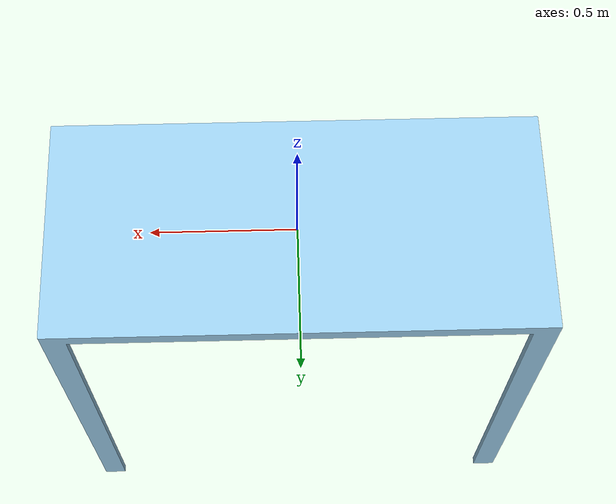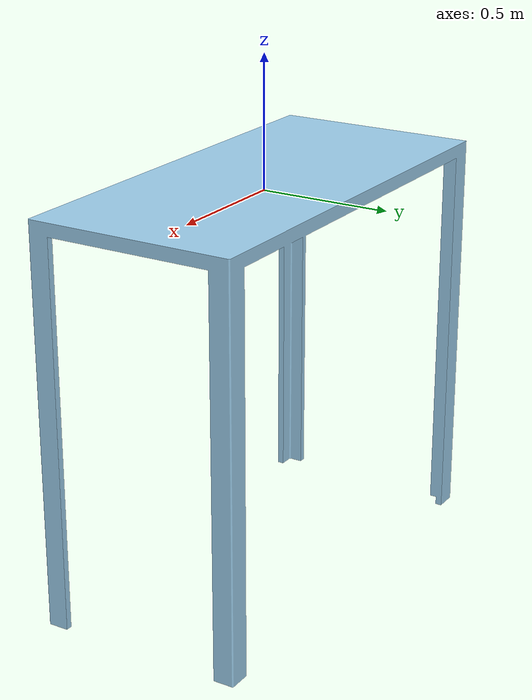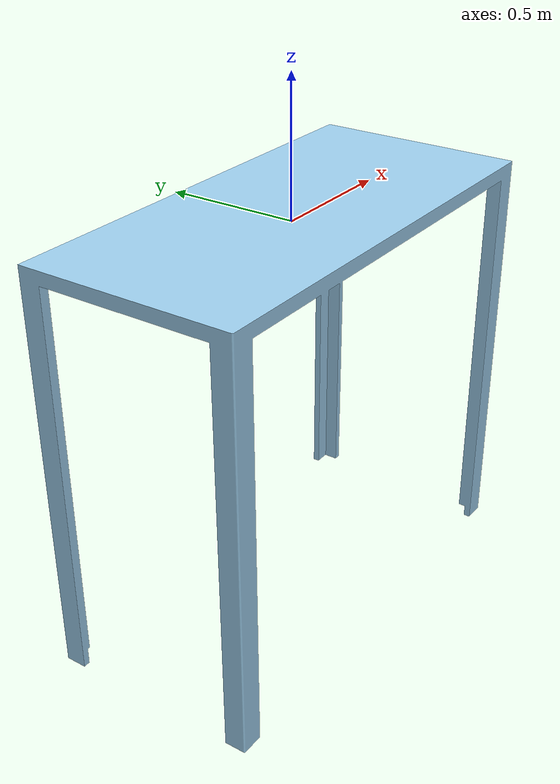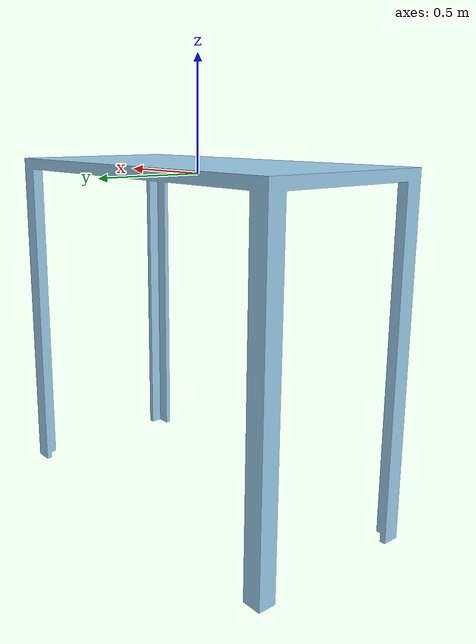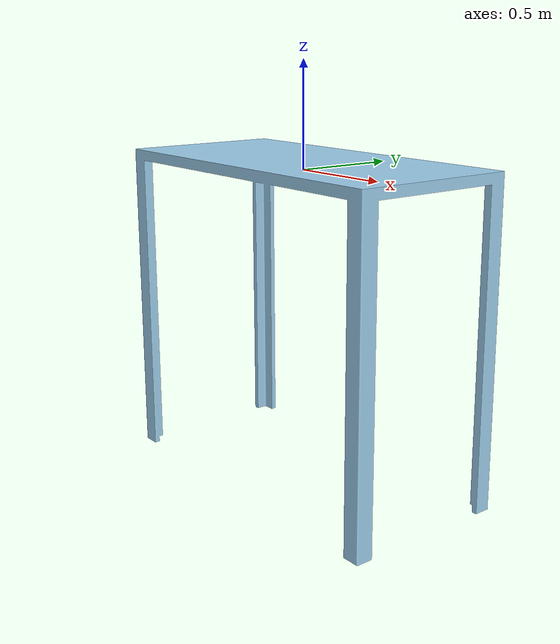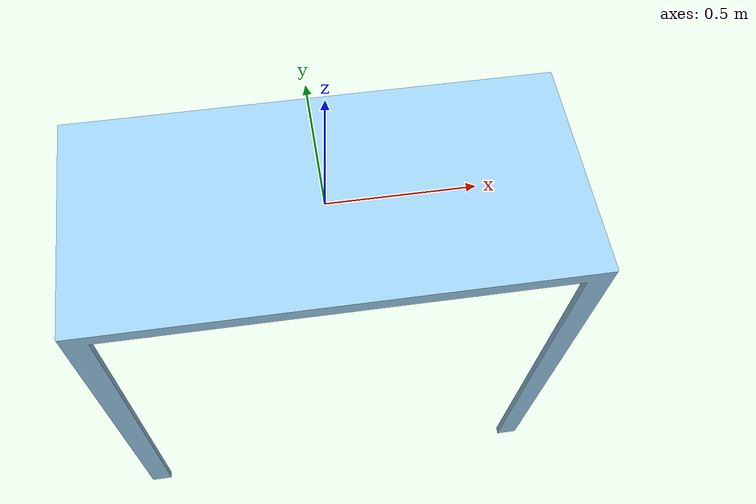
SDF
<?xml version='1.0' ?>
<sdf version='1.6'>
  <model name="table_challenger">
    <pose>0 0 0 0 0 0</pose>
    <static>1</static>
    <link name="workbench">
      <visual name="visual">
        <geometry>
          <mesh><uri>file://table_challenger/mesh/table.dae</uri></mesh>
        </geometry>
      </visual>
      <collision name='collision'>
        <geometry>
          <mesh><uri>file://table_challenger/mesh/table.dae</uri></mesh>
        </geometry>
        <surface>
          <bounce/>
          <friction>
            <ode/>
          </friction>
          <contact>
            <ode/>
          </contact>
        </surface>
      </collision>
      <gravity>1</gravity>
    </link>
  </model>
</sdf>
